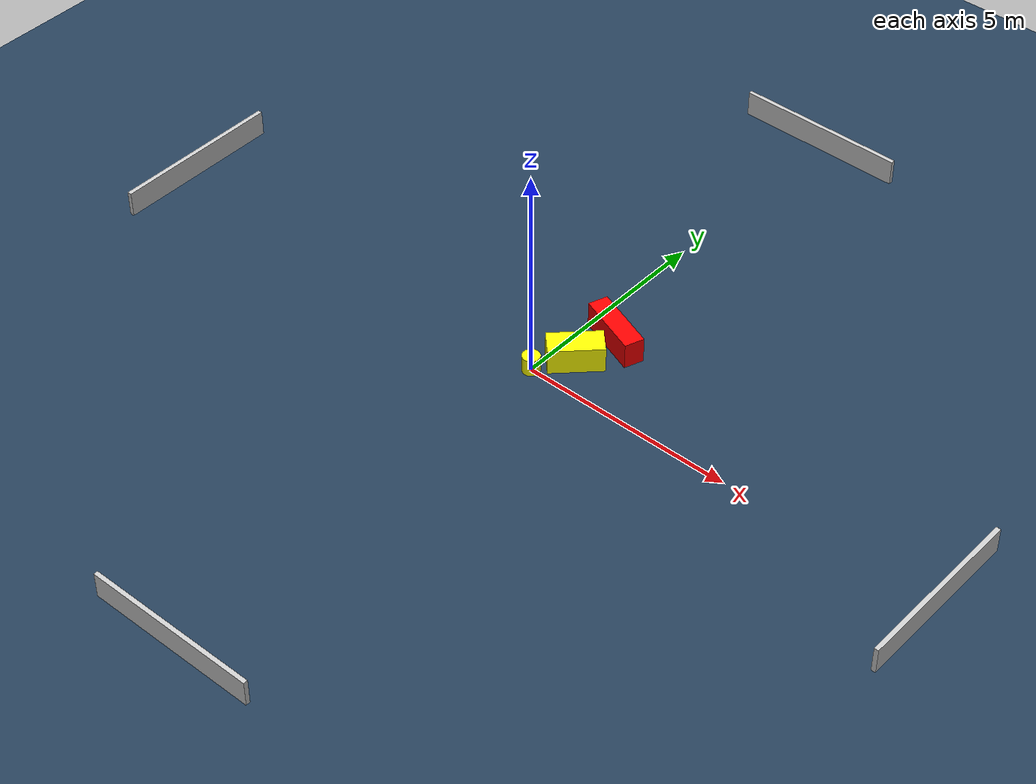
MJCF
<?xml version="1.0" ?>
<mujoco model="generated_environment">
  <option timestep="0.01" integrator="RK4" cone="elliptic"/>
  <default>
    <geom density="1"/>
  </default>
  <asset>
    <texture builtin="gradient" height="3072" name="skybox" rgb1="0.3 0.5 0.7" rgb2="0 0 0" type="skybox" width="512"/>
    <texture builtin="checker" height="300" name="groundplane" rgb1="0.2 0.3 0.4" rgb2="0.1 0.2 0.3" type="2d" width="300"/>
    <material name="groundplane" reflectance="0.2" texrepeat="5 5" texture="groundplane"/>
  </asset>
  <worldbody>
    <light dir="0 0 -1" directional="true" pos="0 0 1.5"/>
    <geom condim="3" friction="0.5 0.005 0.001" material="groundplane" name="floor" pos="0 0 0" size="0 0 0.05" type="plane"/>
    <body name="walls">
      <geom name="wall_1" condim="4" pos="-10.0 0.0 0.3" rgba="0.800000011920929 0.800000011920929 0.800000011920929 1.0" size="0.05 2.0 0.3" type="box"/>
      <geom name="wall_2" condim="4" pos="10.0 0.0 0.3" rgba="0.800000011920929 0.800000011920929 0.800000011920929 1.0" size="0.05 2.0 0.3" type="box"/>
      <geom name="wall_3" condim="4" pos="0.0 -10.0 0.3" rgba="0.800000011920929 0.800000011920929 0.800000011920929 1.0" size="2.0 0.05 0.3" type="box"/>
      <geom name="wall_4" condim="4" pos="0.0 10.0 0.3" rgba="0.800000011920929 0.800000011920929 0.800000011920929 1.0" size="2.0 0.05 0.3" type="box"/>
    </body>
    <body name="robot">
      <joint name="joint_x" type="slide" pos="0 0 0" axis="1 0 0"/>
      <joint name="joint_y" type="slide" pos="0 0 0" axis="0 1 0"/>
      <geom name="robot" type="cylinder" pos="0.0 0.0 0.2" size="0.2 0.2 0.0" mass="5.0" friction="1.0 0.005 0.0001" condim="4" rgba="1.0 1.0 0.0 1.0"/>
    </body>
    <body name="obstacle_1_movable">
      <geom name="obstacle_1_movable" condim="4" pos="0.5441248713964819 0.7638526277609641 0.3" euler="0 0 314.7971451210847" friction="0.0 0.005 0.001" rgba="1.0 1.0 0.0 1.0" size="0.2968187118199106 0.6052855520987112 0.3" type="box" mass="0.1"/>
      <joint type="free"/>
    </body>
    <body name="obstacle_2_static">
      <geom name="obstacle_2_static" condim="4" pos="0.7725968918807455 1.786149234533401 0.3" euler="0 0 159.67853676212917" friction="0.0 0.005 0.001" rgba="1.0 0.0 0.0 1.0" size="0.7611239106855359 0.22789268571325752 0.3" type="box"/>
    </body>
  </worldbody>
  <actuator>
    <motor name="actuator_x" joint="joint_x" gear="1" ctrlrange="-1 1"/>
    <motor name="actuator_y" joint="joint_y" gear="1" ctrlrange="-1 1"/>
  </actuator>
</mujoco>
